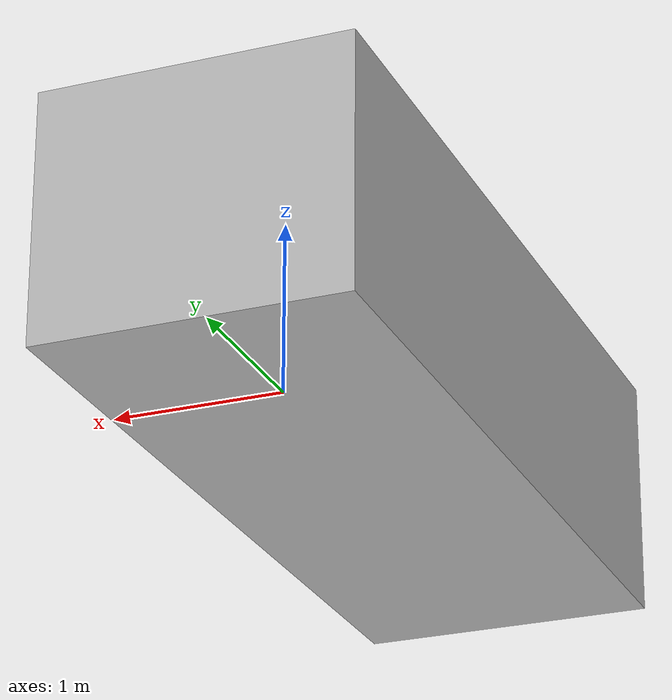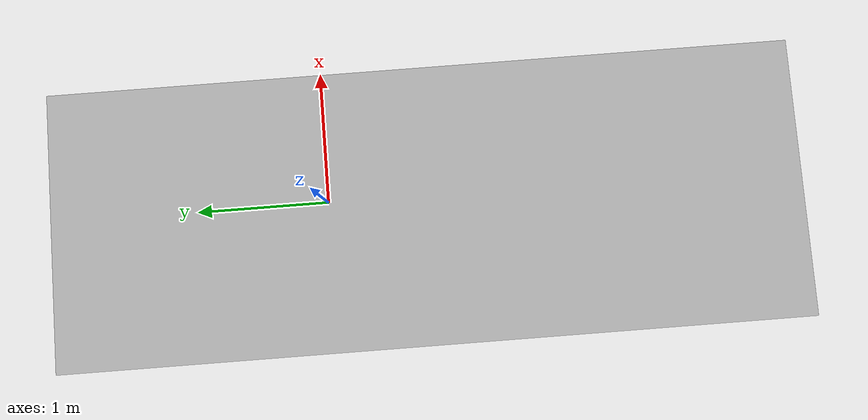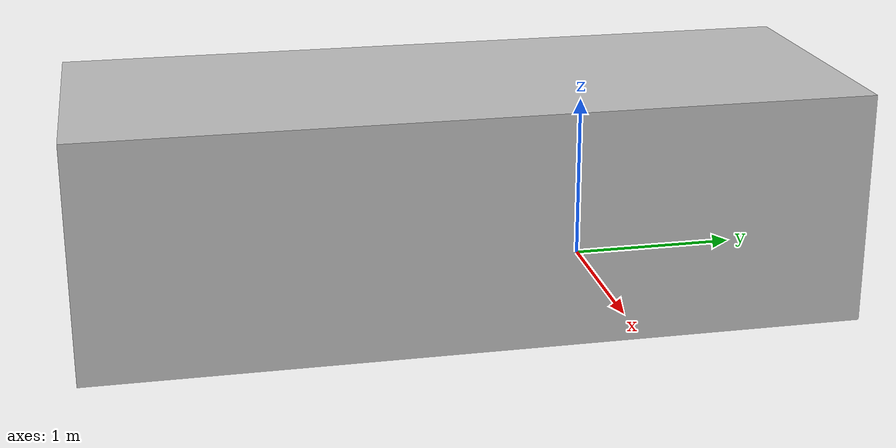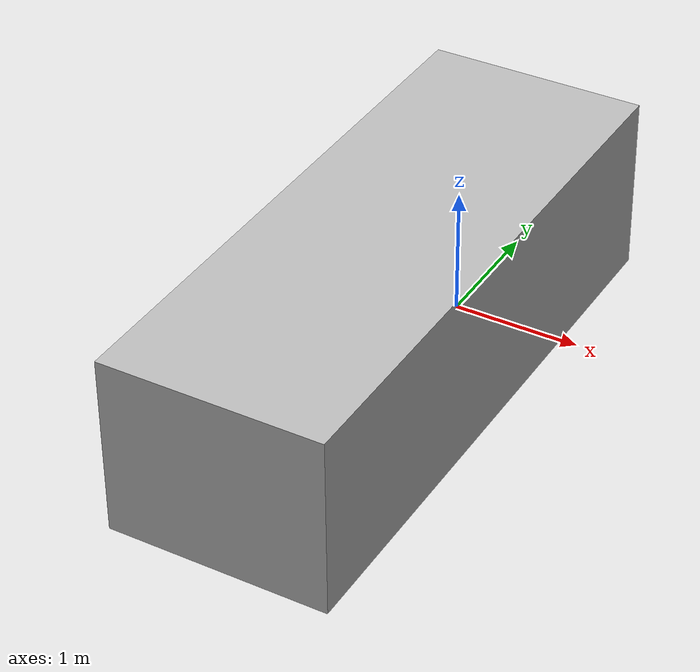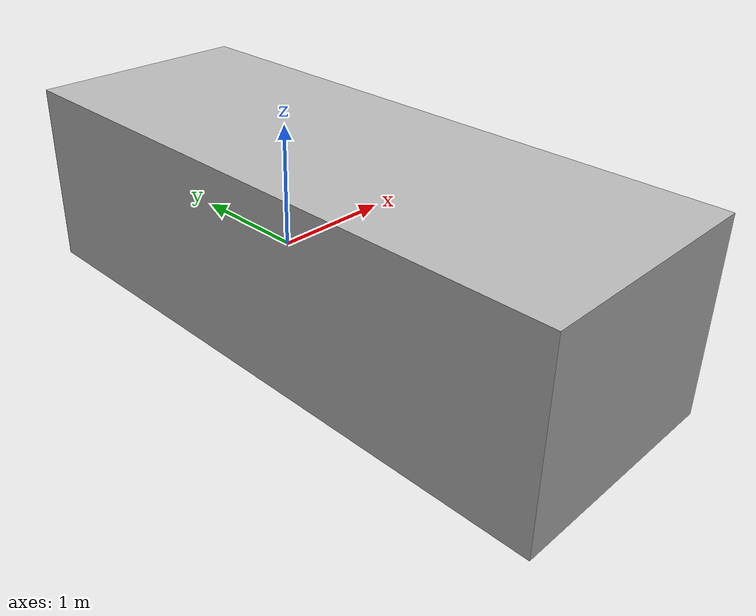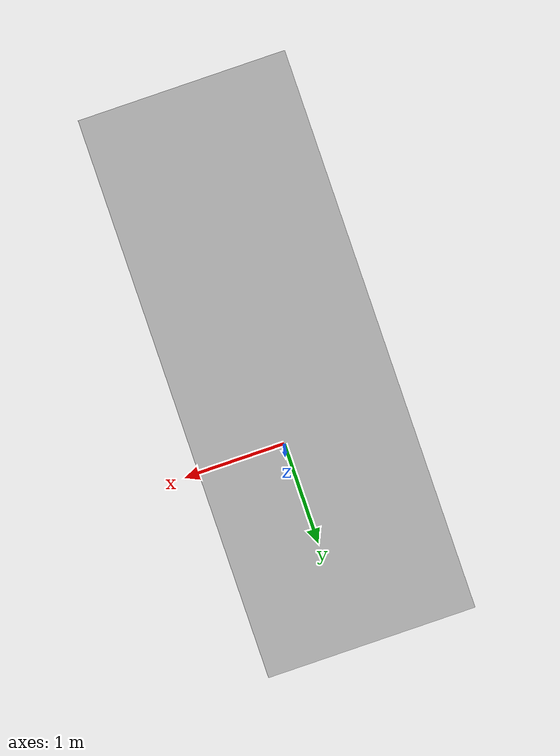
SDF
<?xml version='1.0'?>
<sdf version='1.6'>
  <model name='car_passat'>
    <link name='link_1'>
      <visual name='visual'>
        <pose frame=''>0 0 0 0 -0 0</pose>
        <geometry>
          <mesh>
            <uri>model://car_passat/meshes/car_passat.dae</uri>
            <scale>1.0 1.0 1.0</scale>
          </mesh>
        </geometry>
        <cast_shadows>0</cast_shadows>
        <transparency>0</transparency>
      </visual>
      <collision name='collision'>
        <laser_retro>0</laser_retro>
        <max_contacts>10</max_contacts>
        <pose frame=''>0 0 0 0 -0 0</pose>
        <geometry>
          <mesh>
            <uri>model://car_passat/meshes/car_passat.stl</uri>
            <scale>1.0 1.0 1.0</scale>
          </mesh>
        </geometry>
     </collision>
    </link>

    <static>1</static>
    <allow_auto_disable>1</allow_auto_disable>
  </model>
</sdf>
